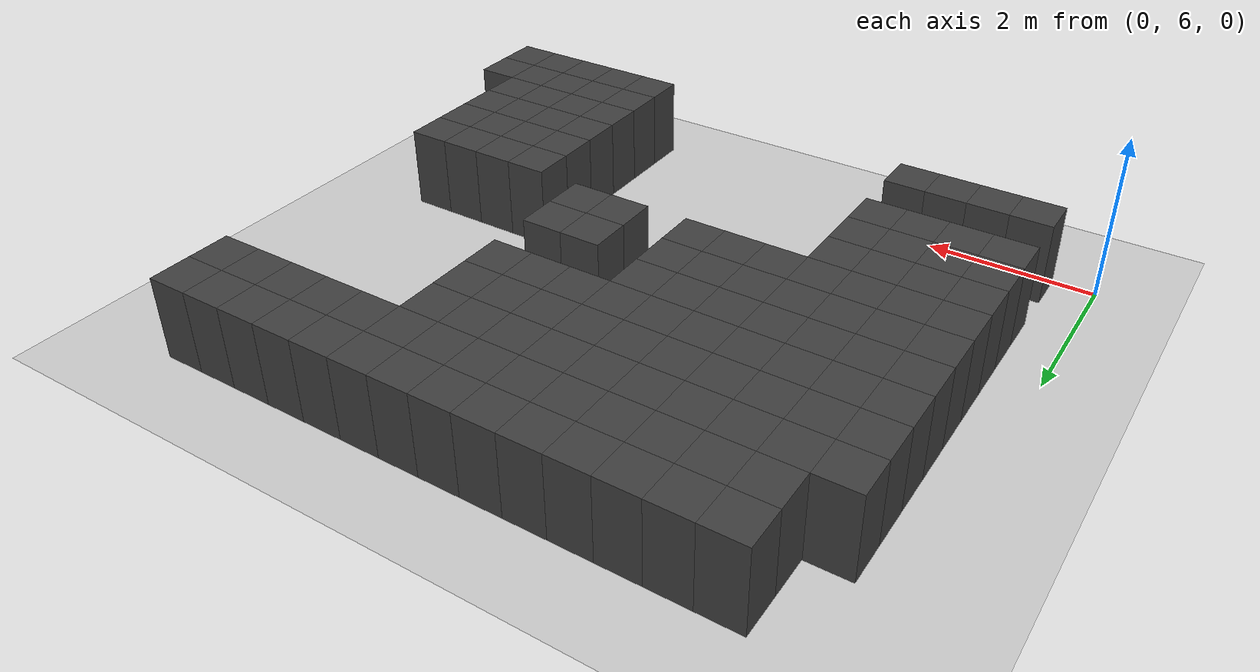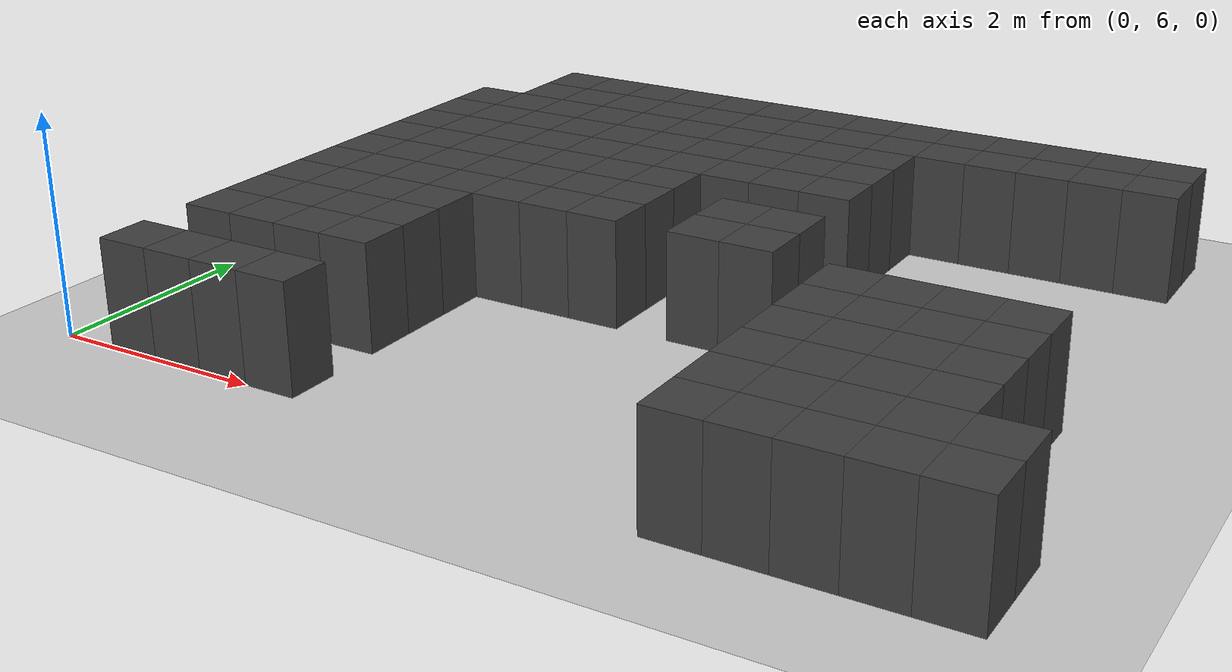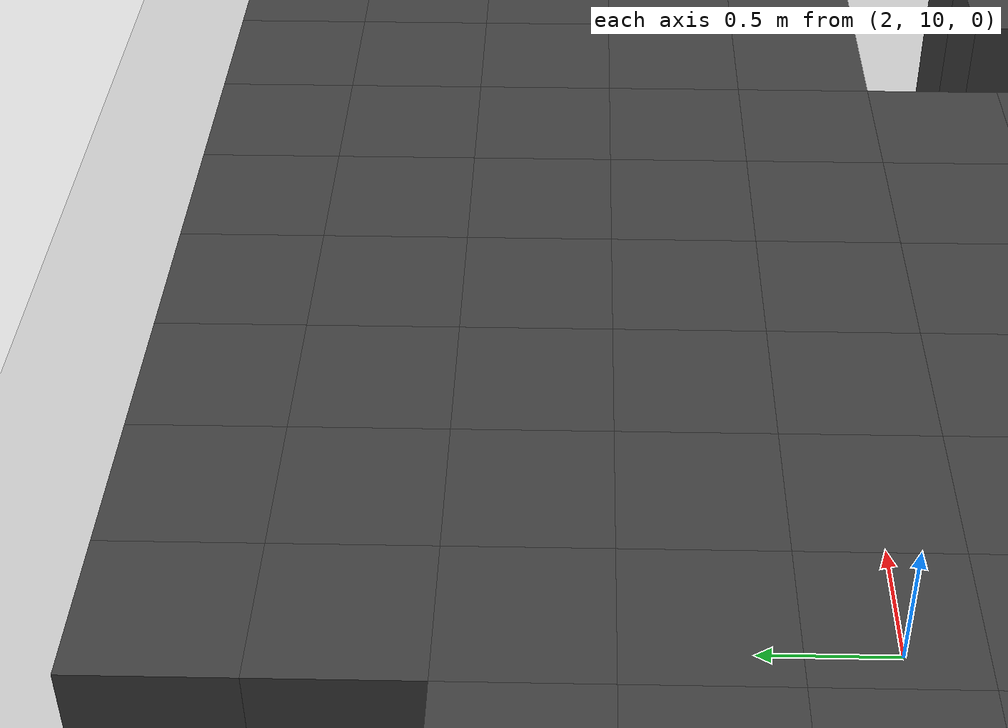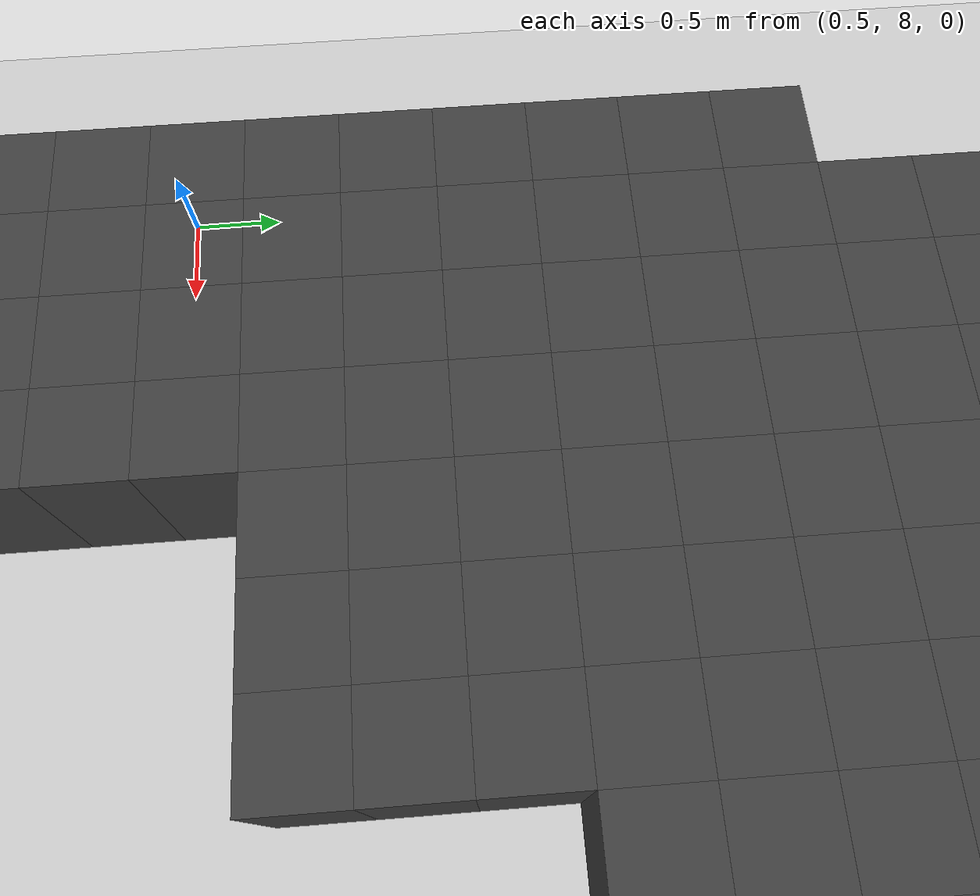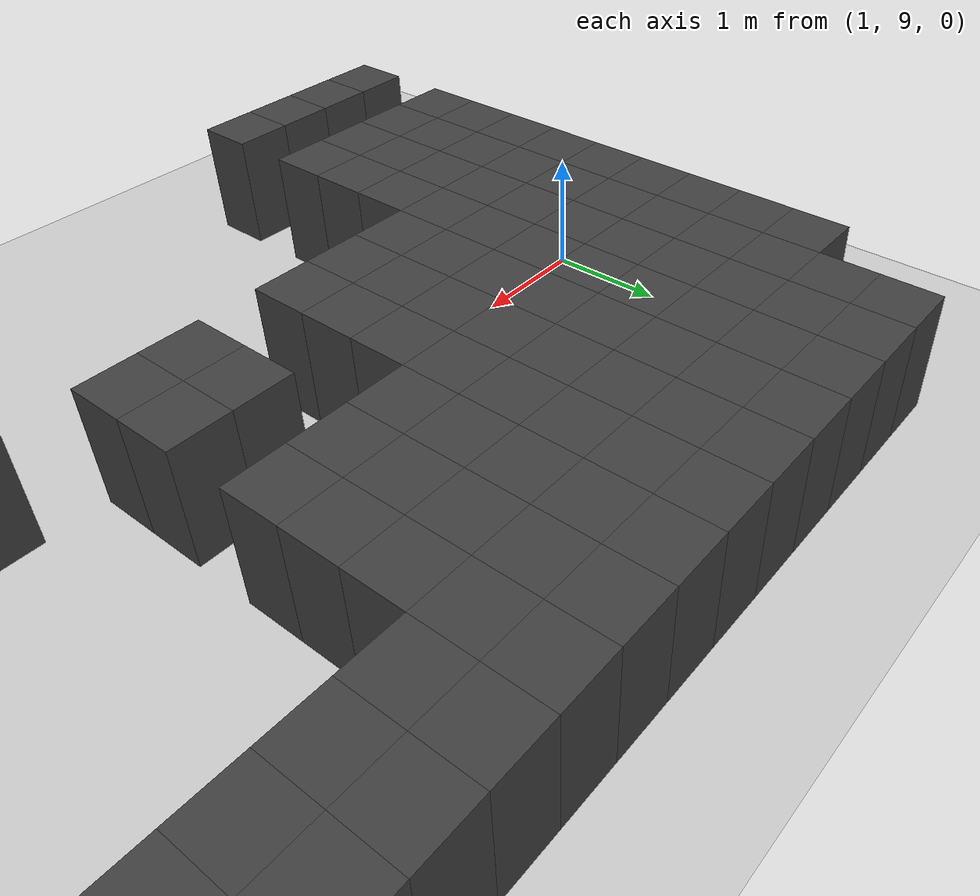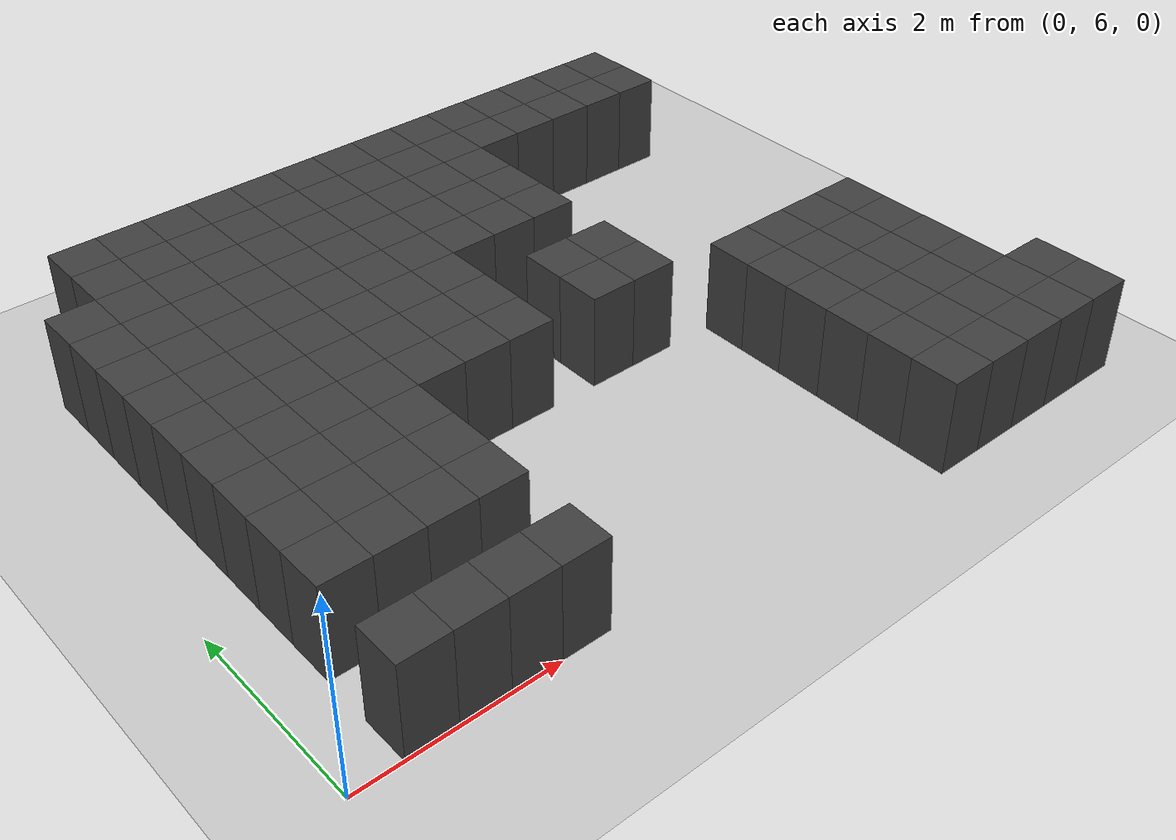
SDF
<sdf version="1.7">
 <world name="map_14802">
  <model name="ground_plane">
   <static>true</static>
   <link name="link">
    <collision name="collision">
     <geometry><plane><normal>0 0 1</normal><size>200 200</size></plane></geometry>
    </collision>
    <visual name="visual">
     <geometry><plane><normal>0 0 1</normal><size>200 200</size></plane></geometry>
     <material><ambient>0.8 0.8 0.8 1</ambient><diffuse>0.8 0.8 0.8 1</diffuse></material>
    </visual>
   </link>
  </model>
  <model name="maze_environment">
   <static>true</static>
   <link name="wall_27">
    <pose>1.250 12.250 0.500 0 0 0</pose>
    <collision name="col"><geometry><box><size>0.5 0.5 1.0</size></box></geometry></collision>
    <visual name="vis">
     <geometry><box><size>0.5 0.5 1.0</size></box></geometry>
     <material><ambient>0.15 0.15 0.15 1</ambient><diffuse>0.25 0.25 0.25 1</diffuse></material>
    </visual>
   </link>
   <link name="wall_28">
    <pose>1.750 12.250 0.500 0 0 0</pose>
    <collision name="col"><geometry><box><size>0.5 0.5 1.0</size></box></geometry></collision>
    <visual name="vis">
     <geometry><box><size>0.5 0.5 1.0</size></box></geometry>
     <material><ambient>0.15 0.15 0.15 1</ambient><diffuse>0.25 0.25 0.25 1</diffuse></material>
    </visual>
   </link>
   <link name="wall_29">
    <pose>2.250 12.250 0.500 0 0 0</pose>
    <collision name="col"><geometry><box><size>0.5 0.5 1.0</size></box></geometry></collision>
    <visual name="vis">
     <geometry><box><size>0.5 0.5 1.0</size></box></geometry>
     <material><ambient>0.15 0.15 0.15 1</ambient><diffuse>0.25 0.25 0.25 1</diffuse></material>
    </visual>
   </link>
   <link name="wall_30">
    <pose>2.750 12.250 0.500 0 0 0</pose>
    <collision name="col"><geometry><box><size>0.5 0.5 1.0</size></box></geometry></collision>
    <visual name="vis">
     <geometry><box><size>0.5 0.5 1.0</size></box></geometry>
     <material><ambient>0.15 0.15 0.15 1</ambient><diffuse>0.25 0.25 0.25 1</diffuse></material>
    </visual>
   </link>
   <link name="wall_31">
    <pose>3.250 12.250 0.500 0 0 0</pose>
    <collision name="col"><geometry><box><size>0.5 0.5 1.0</size></box></geometry></collision>
    <visual name="vis">
     <geometry><box><size>0.5 0.5 1.0</size></box></geometry>
     <material><ambient>0.15 0.15 0.15 1</ambient><diffuse>0.25 0.25 0.25 1</diffuse></material>
    </visual>
   </link>
   <link name="wall_32">
    <pose>3.750 12.250 0.500 0 0 0</pose>
    <collision name="col"><geometry><box><size>0.5 0.5 1.0</size></box></geometry></collision>
    <visual name="vis">
     <geometry><box><size>0.5 0.5 1.0</size></box></geometry>
     <material><ambient>0.15 0.15 0.15 1</ambient><diffuse>0.25 0.25 0.25 1</diffuse></material>
    </visual>
   </link>
   <link name="wall_33">
    <pose>4.250 12.250 0.500 0 0 0</pose>
    <collision name="col"><geometry><box><size>0.5 0.5 1.0</size></box></geometry></collision>
    <visual name="vis">
     <geometry><box><size>0.5 0.5 1.0</size></box></geometry>
     <material><ambient>0.15 0.15 0.15 1</ambient><diffuse>0.25 0.25 0.25 1</diffuse></material>
    </visual>
   </link>
   <link name="wall_34">
    <pose>4.750 12.250 0.500 0 0 0</pose>
    <collision name="col"><geometry><box><size>0.5 0.5 1.0</size></box></geometry></collision>
    <visual name="vis">
     <geometry><box><size>0.5 0.5 1.0</size></box></geometry>
     <material><ambient>0.15 0.15 0.15 1</ambient><diffuse>0.25 0.25 0.25 1</diffuse></material>
    </visual>
   </link>
   <link name="wall_35">
    <pose>5.250 12.250 0.500 0 0 0</pose>
    <collision name="col"><geometry><box><size>0.5 0.5 1.0</size></box></geometry></collision>
    <visual name="vis">
     <geometry><box><size>0.5 0.5 1.0</size></box></geometry>
     <material><ambient>0.15 0.15 0.15 1</ambient><diffuse>0.25 0.25 0.25 1</diffuse></material>
    </visual>
   </link>
   <link name="wall_36">
    <pose>5.750 12.250 0.500 0 0 0</pose>
    <collision name="col"><geometry><box><size>0.5 0.5 1.0</size></box></geometry></collision>
    <visual name="vis">
     <geometry><box><size>0.5 0.5 1.0</size></box></geometry>
     <material><ambient>0.15 0.15 0.15 1</ambient><diffuse>0.25 0.25 0.25 1</diffuse></material>
    </visual>
   </link>
   <link name="wall_37">
    <pose>6.250 12.250 0.500 0 0 0</pose>
    <collision name="col"><geometry><box><size>0.5 0.5 1.0</size></box></geometry></collision>
    <visual name="vis">
     <geometry><box><size>0.5 0.5 1.0</size></box></geometry>
     <material><ambient>0.15 0.15 0.15 1</ambient><diffuse>0.25 0.25 0.25 1</diffuse></material>
    </visual>
   </link>
   <link name="wall_38">
    <pose>6.750 12.250 0.500 0 0 0</pose>
    <collision name="col"><geometry><box><size>0.5 0.5 1.0</size></box></geometry></collision>
    <visual name="vis">
     <geometry><box><size>0.5 0.5 1.0</size></box></geometry>
     <material><ambient>0.15 0.15 0.15 1</ambient><diffuse>0.25 0.25 0.25 1</diffuse></material>
    </visual>
   </link>
   <link name="wall_39">
    <pose>7.250 12.250 0.500 0 0 0</pose>
    <collision name="col"><geometry><box><size>0.5 0.5 1.0</size></box></geometry></collision>
    <visual name="vis">
     <geometry><box><size>0.5 0.5 1.0</size></box></geometry>
     <material><ambient>0.15 0.15 0.15 1</ambient><diffuse>0.25 0.25 0.25 1</diffuse></material>
    </visual>
   </link>
   <link name="wall_40">
    <pose>7.750 12.250 0.500 0 0 0</pose>
    <collision name="col"><geometry><box><size>0.5 0.5 1.0</size></box></geometry></collision>
    <visual name="vis">
     <geometry><box><size>0.5 0.5 1.0</size></box></geometry>
     <material><ambient>0.15 0.15 0.15 1</ambient><diffuse>0.25 0.25 0.25 1</diffuse></material>
    </visual>
   </link>
   <link name="wall_74">
    <pose>1.250 11.750 0.500 0 0 0</pose>
    <collision name="col"><geometry><box><size>0.5 0.5 1.0</size></box></geometry></collision>
    <visual name="vis">
     <geometry><box><size>0.5 0.5 1.0</size></box></geometry>
     <material><ambient>0.15 0.15 0.15 1</ambient><diffuse>0.25 0.25 0.25 1</diffuse></material>
    </visual>
   </link>
   <link name="wall_75">
    <pose>1.750 11.750 0.500 0 0 0</pose>
    <collision name="col"><geometry><box><size>0.5 0.5 1.0</size></box></geometry></collision>
    <visual name="vis">
     <geometry><box><size>0.5 0.5 1.0</size></box></geometry>
     <material><ambient>0.15 0.15 0.15 1</ambient><diffuse>0.25 0.25 0.25 1</diffuse></material>
    </visual>
   </link>
   <link name="wall_76">
    <pose>2.250 11.750 0.500 0 0 0</pose>
    <collision name="col"><geometry><box><size>0.5 0.5 1.0</size></box></geometry></collision>
    <visual name="vis">
     <geometry><box><size>0.5 0.5 1.0</size></box></geometry>
     <material><ambient>0.15 0.15 0.15 1</ambient><diffuse>0.25 0.25 0.25 1</diffuse></material>
    </visual>
   </link>
   <link name="wall_77">
    <pose>2.750 11.750 0.500 0 0 0</pose>
    <collision name="col"><geometry><box><size>0.5 0.5 1.0</size></box></geometry></collision>
    <visual name="vis">
     <geometry><box><size>0.5 0.5 1.0</size></box></geometry>
     <material><ambient>0.15 0.15 0.15 1</ambient><diffuse>0.25 0.25 0.25 1</diffuse></material>
    </visual>
   </link>
   <link name="wall_78">
    <pose>3.250 11.750 0.500 0 0 0</pose>
    <collision name="col"><geometry><box><size>0.5 0.5 1.0</size></box></geometry></collision>
    <visual name="vis">
     <geometry><box><size>0.5 0.5 1.0</size></box></geometry>
     <material><ambient>0.15 0.15 0.15 1</ambient><diffuse>0.25 0.25 0.25 1</diffuse></material>
    </visual>
   </link>
   <link name="wall_79">
    <pose>3.750 11.750 0.500 0 0 0</pose>
    <collision name="col"><geometry><box><size>0.5 0.5 1.0</size></box></geometry></collision>
    <visual name="vis">
     <geometry><box><size>0.5 0.5 1.0</size></box></geometry>
     <material><ambient>0.15 0.15 0.15 1</ambient><diffuse>0.25 0.25 0.25 1</diffuse></material>
    </visual>
   </link>
   <link name="wall_80">
    <pose>4.250 11.750 0.500 0 0 0</pose>
    <collision name="col"><geometry><box><size>0.5 0.5 1.0</size></box></geometry></collision>
    <visual name="vis">
     <geometry><box><size>0.5 0.5 1.0</size></box></geometry>
     <material><ambient>0.15 0.15 0.15 1</ambient><diffuse>0.25 0.25 0.25 1</diffuse></material>
    </visual>
   </link>
   <link name="wall_81">
    <pose>4.750 11.750 0.500 0 0 0</pose>
    <collision name="col"><geometry><box><size>0.5 0.5 1.0</size></box></geometry></collision>
    <visual name="vis">
     <geometry><box><size>0.5 0.5 1.0</size></box></geometry>
     <material><ambient>0.15 0.15 0.15 1</ambient><diffuse>0.25 0.25 0.25 1</diffuse></material>
    </visual>
   </link>
   <link name="wall_82">
    <pose>5.250 11.750 0.500 0 0 0</pose>
    <collision name="col"><geometry><box><size>0.5 0.5 1.0</size></box></geometry></collision>
    <visual name="vis">
     <geometry><box><size>0.5 0.5 1.0</size></box></geometry>
     <material><ambient>0.15 0.15 0.15 1</ambient><diffuse>0.25 0.25 0.25 1</diffuse></material>
    </visual>
   </link>
   <link name="wall_83">
    <pose>5.750 11.750 0.500 0 0 0</pose>
    <collision name="col"><geometry><box><size>0.5 0.5 1.0</size></box></geometry></collision>
    <visual name="vis">
     <geometry><box><size>0.5 0.5 1.0</size></box></geometry>
     <material><ambient>0.15 0.15 0.15 1</ambient><diffuse>0.25 0.25 0.25 1</diffuse></material>
    </visual>
   </link>
   <link name="wall_84">
    <pose>6.250 11.750 0.500 0 0 0</pose>
    <collision name="col"><geometry><box><size>0.5 0.5 1.0</size></box></geometry></collision>
    <visual name="vis">
     <geometry><box><size>0.5 0.5 1.0</size></box></geometry>
     <material><ambient>0.15 0.15 0.15 1</ambient><diffuse>0.25 0.25 0.25 1</diffuse></material>
    </visual>
   </link>
   <link name="wall_85">
    <pose>6.750 11.750 0.500 0 0 0</pose>
    <collision name="col"><geometry><box><size>0.5 0.5 1.0</size></box></geometry></collision>
    <visual name="vis">
     <geometry><box><size>0.5 0.5 1.0</size></box></geometry>
     <material><ambient>0.15 0.15 0.15 1</ambient><diffuse>0.25 0.25 0.25 1</diffuse></material>
    </visual>
   </link>
   <link name="wall_86">
    <pose>7.250 11.750 0.500 0 0 0</pose>
    <collision name="col"><geometry><box><size>0.5 0.5 1.0</size></box></geometry></collision>
    <visual name="vis">
     <geometry><box><size>0.5 0.5 1.0</size></box></geometry>
     <material><ambient>0.15 0.15 0.15 1</ambient><diffuse>0.25 0.25 0.25 1</diffuse></material>
    </visual>
   </link>
   <link name="wall_87">
    <pose>7.750 11.750 0.500 0 0 0</pose>
    <collision name="col"><geometry><box><size>0.5 0.5 1.0</size></box></geometry></collision>
    <visual name="vis">
     <geometry><box><size>0.5 0.5 1.0</size></box></geometry>
     <material><ambient>0.15 0.15 0.15 1</ambient><diffuse>0.25 0.25 0.25 1</diffuse></material>
    </visual>
   </link>
   <link name="wall_120">
    <pose>0.750 11.250 0.500 0 0 0</pose>
    <collision name="col"><geometry><box><size>0.5 0.5 1.0</size></box></geometry></collision>
    <visual name="vis">
     <geometry><box><size>0.5 0.5 1.0</size></box></geometry>
     <material><ambient>0.15 0.15 0.15 1</ambient><diffuse>0.25 0.25 0.25 1</diffuse></material>
    </visual>
   </link>
   <link name="wall_121">
    <pose>1.250 11.250 0.500 0 0 0</pose>
    <collision name="col"><geometry><box><size>0.5 0.5 1.0</size></box></geometry></collision>
    <visual name="vis">
     <geometry><box><size>0.5 0.5 1.0</size></box></geometry>
     <material><ambient>0.15 0.15 0.15 1</ambient><diffuse>0.25 0.25 0.25 1</diffuse></material>
    </visual>
   </link>
   <link name="wall_122">
    <pose>1.750 11.250 0.500 0 0 0</pose>
    <collision name="col"><geometry><box><size>0.5 0.5 1.0</size></box></geometry></collision>
    <visual name="vis">
     <geometry><box><size>0.5 0.5 1.0</size></box></geometry>
     <material><ambient>0.15 0.15 0.15 1</ambient><diffuse>0.25 0.25 0.25 1</diffuse></material>
    </visual>
   </link>
   <link name="wall_123">
    <pose>2.250 11.250 0.500 0 0 0</pose>
    <collision name="col"><geometry><box><size>0.5 0.5 1.0</size></box></geometry></collision>
    <visual name="vis">
     <geometry><box><size>0.5 0.5 1.0</size></box></geometry>
     <material><ambient>0.15 0.15 0.15 1</ambient><diffuse>0.25 0.25 0.25 1</diffuse></material>
    </visual>
   </link>
   <link name="wall_124">
    <pose>2.750 11.250 0.500 0 0 0</pose>
    <collision name="col"><geometry><box><size>0.5 0.5 1.0</size></box></geometry></collision>
    <visual name="vis">
     <geometry><box><size>0.5 0.5 1.0</size></box></geometry>
     <material><ambient>0.15 0.15 0.15 1</ambient><diffuse>0.25 0.25 0.25 1</diffuse></material>
    </visual>
   </link>
   <link name="wall_125">
    <pose>3.250 11.250 0.500 0 0 0</pose>
    <collision name="col"><geometry><box><size>0.5 0.5 1.0</size></box></geometry></collision>
    <visual name="vis">
     <geometry><box><size>0.5 0.5 1.0</size></box></geometry>
     <material><ambient>0.15 0.15 0.15 1</ambient><diffuse>0.25 0.25 0.25 1</diffuse></material>
    </visual>
   </link>
   <link name="wall_126">
    <pose>3.750 11.250 0.500 0 0 0</pose>
    <collision name="col"><geometry><box><size>0.5 0.5 1.0</size></box></geometry></collision>
    <visual name="vis">
     <geometry><box><size>0.5 0.5 1.0</size></box></geometry>
     <material><ambient>0.15 0.15 0.15 1</ambient><diffuse>0.25 0.25 0.25 1</diffuse></material>
    </visual>
   </link>
   <link name="wall_127">
    <pose>4.250 11.250 0.500 0 0 0</pose>
    <collision name="col"><geometry><box><size>0.5 0.5 1.0</size></box></geometry></collision>
    <visual name="vis">
     <geometry><box><size>0.5 0.5 1.0</size></box></geometry>
     <material><ambient>0.15 0.15 0.15 1</ambient><diffuse>0.25 0.25 0.25 1</diffuse></material>
    </visual>
   </link>
   <link name="wall_128">
    <pose>4.750 11.250 0.500 0 0 0</pose>
    <collision name="col"><geometry><box><size>0.5 0.5 1.0</size></box></geometry></collision>
    <visual name="vis">
     <geometry><box><size>0.5 0.5 1.0</size></box></geometry>
     <material><ambient>0.15 0.15 0.15 1</ambient><diffuse>0.25 0.25 0.25 1</diffuse></material>
    </visual>
   </link>
   <link name="wall_129">
    <pose>5.250 11.250 0.500 0 0 0</pose>
    <collision name="col"><geometry><box><size>0.5 0.5 1.0</size></box></geometry></collision>
    <visual name="vis">
     <geometry><box><size>0.5 0.5 1.0</size></box></geometry>
     <material><ambient>0.15 0.15 0.15 1</ambient><diffuse>0.25 0.25 0.25 1</diffuse></material>
    </visual>
   </link>
   <link name="wall_162">
    <pose>0.750 10.750 0.500 0 0 0</pose>
    <collision name="col"><geometry><box><size>0.5 0.5 1.0</size></box></geometry></collision>
    <visual name="vis">
     <geometry><box><size>0.5 0.5 1.0</size></box></geometry>
     <material><ambient>0.15 0.15 0.15 1</ambient><diffuse>0.25 0.25 0.25 1</diffuse></material>
    </visual>
   </link>
   <link name="wall_163">
    <pose>1.250 10.750 0.500 0 0 0</pose>
    <collision name="col"><geometry><box><size>0.5 0.5 1.0</size></box></geometry></collision>
    <visual name="vis">
     <geometry><box><size>0.5 0.5 1.0</size></box></geometry>
     <material><ambient>0.15 0.15 0.15 1</ambient><diffuse>0.25 0.25 0.25 1</diffuse></material>
    </visual>
   </link>
   <link name="wall_164">
    <pose>1.750 10.750 0.500 0 0 0</pose>
    <collision name="col"><geometry><box><size>0.5 0.5 1.0</size></box></geometry></collision>
    <visual name="vis">
     <geometry><box><size>0.5 0.5 1.0</size></box></geometry>
     <material><ambient>0.15 0.15 0.15 1</ambient><diffuse>0.25 0.25 0.25 1</diffuse></material>
    </visual>
   </link>
   <link name="wall_165">
    <pose>2.250 10.750 0.500 0 0 0</pose>
    <collision name="col"><geometry><box><size>0.5 0.5 1.0</size></box></geometry></collision>
    <visual name="vis">
     <geometry><box><size>0.5 0.5 1.0</size></box></geometry>
     <material><ambient>0.15 0.15 0.15 1</ambient><diffuse>0.25 0.25 0.25 1</diffuse></material>
    </visual>
   </link>
   <link name="wall_166">
    <pose>2.750 10.750 0.500 0 0 0</pose>
    <collision name="col"><geometry><box><size>0.5 0.5 1.0</size></box></geometry></collision>
    <visual name="vis">
     <geometry><box><size>0.5 0.5 1.0</size></box></geometry>
     <material><ambient>0.15 0.15 0.15 1</ambient><diffuse>0.25 0.25 0.25 1</diffuse></material>
    </visual>
   </link>
   <link name="wall_167">
    <pose>3.250 10.750 0.500 0 0 0</pose>
    <collision name="col"><geometry><box><size>0.5 0.5 1.0</size></box></geometry></collision>
    <visual name="vis">
     <geometry><box><size>0.5 0.5 1.0</size></box></geometry>
     <material><ambient>0.15 0.15 0.15 1</ambient><diffuse>0.25 0.25 0.25 1</diffuse></material>
    </visual>
   </link>
   <link name="wall_168">
    <pose>3.750 10.750 0.500 0 0 0</pose>
    <collision name="col"><geometry><box><size>0.5 0.5 1.0</size></box></geometry></collision>
    <visual name="vis">
     <geometry><box><size>0.5 0.5 1.0</size></box></geometry>
     <material><ambient>0.15 0.15 0.15 1</ambient><diffuse>0.25 0.25 0.25 1</diffuse></material>
    </visual>
   </link>
   <link name="wall_169">
    <pose>4.250 10.750 0.500 0 0 0</pose>
    <collision name="col"><geometry><box><size>0.5 0.5 1.0</size></box></geometry></collision>
    <visual name="vis">
     <geometry><box><size>0.5 0.5 1.0</size></box></geometry>
     <material><ambient>0.15 0.15 0.15 1</ambient><diffuse>0.25 0.25 0.25 1</diffuse></material>
    </visual>
   </link>
   <link name="wall_170">
    <pose>4.750 10.750 0.500 0 0 0</pose>
    <collision name="col"><geometry><box><size>0.5 0.5 1.0</size></box></geometry></collision>
    <visual name="vis">
     <geometry><box><size>0.5 0.5 1.0</size></box></geometry>
     <material><ambient>0.15 0.15 0.15 1</ambient><diffuse>0.25 0.25 0.25 1</diffuse></material>
    </visual>
   </link>
   <link name="wall_171">
    <pose>5.250 10.750 0.500 0 0 0</pose>
    <collision name="col"><geometry><box><size>0.5 0.5 1.0</size></box></geometry></collision>
    <visual name="vis">
     <geometry><box><size>0.5 0.5 1.0</size></box></geometry>
     <material><ambient>0.15 0.15 0.15 1</ambient><diffuse>0.25 0.25 0.25 1</diffuse></material>
    </visual>
   </link>
   <link name="wall_198">
    <pose>0.750 10.250 0.500 0 0 0</pose>
    <collision name="col"><geometry><box><size>0.5 0.5 1.0</size></box></geometry></collision>
    <visual name="vis">
     <geometry><box><size>0.5 0.5 1.0</size></box></geometry>
     <material><ambient>0.15 0.15 0.15 1</ambient><diffuse>0.25 0.25 0.25 1</diffuse></material>
    </visual>
   </link>
   <link name="wall_199">
    <pose>1.250 10.250 0.500 0 0 0</pose>
    <collision name="col"><geometry><box><size>0.5 0.5 1.0</size></box></geometry></collision>
    <visual name="vis">
     <geometry><box><size>0.5 0.5 1.0</size></box></geometry>
     <material><ambient>0.15 0.15 0.15 1</ambient><diffuse>0.25 0.25 0.25 1</diffuse></material>
    </visual>
   </link>
   <link name="wall_200">
    <pose>1.750 10.250 0.500 0 0 0</pose>
    <collision name="col"><geometry><box><size>0.5 0.5 1.0</size></box></geometry></collision>
    <visual name="vis">
     <geometry><box><size>0.5 0.5 1.0</size></box></geometry>
     <material><ambient>0.15 0.15 0.15 1</ambient><diffuse>0.25 0.25 0.25 1</diffuse></material>
    </visual>
   </link>
   <link name="wall_201">
    <pose>2.250 10.250 0.500 0 0 0</pose>
    <collision name="col"><geometry><box><size>0.5 0.5 1.0</size></box></geometry></collision>
    <visual name="vis">
     <geometry><box><size>0.5 0.5 1.0</size></box></geometry>
     <material><ambient>0.15 0.15 0.15 1</ambient><diffuse>0.25 0.25 0.25 1</diffuse></material>
    </visual>
   </link>
   <link name="wall_202">
    <pose>2.750 10.250 0.500 0 0 0</pose>
    <collision name="col"><geometry><box><size>0.5 0.5 1.0</size></box></geometry></collision>
    <visual name="vis">
     <geometry><box><size>0.5 0.5 1.0</size></box></geometry>
     <material><ambient>0.15 0.15 0.15 1</ambient><diffuse>0.25 0.25 0.25 1</diffuse></material>
    </visual>
   </link>
   <link name="wall_203">
    <pose>3.250 10.250 0.500 0 0 0</pose>
    <collision name="col"><geometry><box><size>0.5 0.5 1.0</size></box></geometry></collision>
    <visual name="vis">
     <geometry><box><size>0.5 0.5 1.0</size></box></geometry>
     <material><ambient>0.15 0.15 0.15 1</ambient><diffuse>0.25 0.25 0.25 1</diffuse></material>
    </visual>
   </link>
   <link name="wall_204">
    <pose>3.750 10.250 0.500 0 0 0</pose>
    <collision name="col"><geometry><box><size>0.5 0.5 1.0</size></box></geometry></collision>
    <visual name="vis">
     <geometry><box><size>0.5 0.5 1.0</size></box></geometry>
     <material><ambient>0.15 0.15 0.15 1</ambient><diffuse>0.25 0.25 0.25 1</diffuse></material>
    </visual>
   </link>
   <link name="wall_205">
    <pose>4.250 10.250 0.500 0 0 0</pose>
    <collision name="col"><geometry><box><size>0.5 0.5 1.0</size></box></geometry></collision>
    <visual name="vis">
     <geometry><box><size>0.5 0.5 1.0</size></box></geometry>
     <material><ambient>0.15 0.15 0.15 1</ambient><diffuse>0.25 0.25 0.25 1</diffuse></material>
    </visual>
   </link>
   <link name="wall_206">
    <pose>4.750 10.250 0.500 0 0 0</pose>
    <collision name="col"><geometry><box><size>0.5 0.5 1.0</size></box></geometry></collision>
    <visual name="vis">
     <geometry><box><size>0.5 0.5 1.0</size></box></geometry>
     <material><ambient>0.15 0.15 0.15 1</ambient><diffuse>0.25 0.25 0.25 1</diffuse></material>
    </visual>
   </link>
   <link name="wall_207">
    <pose>5.250 10.250 0.500 0 0 0</pose>
    <collision name="col"><geometry><box><size>0.5 0.5 1.0</size></box></geometry></collision>
    <visual name="vis">
     <geometry><box><size>0.5 0.5 1.0</size></box></geometry>
     <material><ambient>0.15 0.15 0.15 1</ambient><diffuse>0.25 0.25 0.25 1</diffuse></material>
    </visual>
   </link>
   <link name="wall_230">
    <pose>0.750 9.750 0.500 0 0 0</pose>
    <collision name="col"><geometry><box><size>0.5 0.5 1.0</size></box></geometry></collision>
    <visual name="vis">
     <geometry><box><size>0.5 0.5 1.0</size></box></geometry>
     <material><ambient>0.15 0.15 0.15 1</ambient><diffuse>0.25 0.25 0.25 1</diffuse></material>
    </visual>
   </link>
   <link name="wall_231">
    <pose>1.250 9.750 0.500 0 0 0</pose>
    <collision name="col"><geometry><box><size>0.5 0.5 1.0</size></box></geometry></collision>
    <visual name="vis">
     <geometry><box><size>0.5 0.5 1.0</size></box></geometry>
     <material><ambient>0.15 0.15 0.15 1</ambient><diffuse>0.25 0.25 0.25 1</diffuse></material>
    </visual>
   </link>
   <link name="wall_232">
    <pose>1.750 9.750 0.500 0 0 0</pose>
    <collision name="col"><geometry><box><size>0.5 0.5 1.0</size></box></geometry></collision>
    <visual name="vis">
     <geometry><box><size>0.5 0.5 1.0</size></box></geometry>
     <material><ambient>0.15 0.15 0.15 1</ambient><diffuse>0.25 0.25 0.25 1</diffuse></material>
    </visual>
   </link>
   <link name="wall_233">
    <pose>2.250 9.750 0.500 0 0 0</pose>
    <collision name="col"><geometry><box><size>0.5 0.5 1.0</size></box></geometry></collision>
    <visual name="vis">
     <geometry><box><size>0.5 0.5 1.0</size></box></geometry>
     <material><ambient>0.15 0.15 0.15 1</ambient><diffuse>0.25 0.25 0.25 1</diffuse></material>
    </visual>
   </link>
   <link name="wall_234">
    <pose>2.750 9.750 0.500 0 0 0</pose>
    <collision name="col"><geometry><box><size>0.5 0.5 1.0</size></box></geometry></collision>
    <visual name="vis">
     <geometry><box><size>0.5 0.5 1.0</size></box></geometry>
     <material><ambient>0.15 0.15 0.15 1</ambient><diffuse>0.25 0.25 0.25 1</diffuse></material>
    </visual>
   </link>
   <link name="wall_235">
    <pose>3.250 9.750 0.500 0 0 0</pose>
    <collision name="col"><geometry><box><size>0.5 0.5 1.0</size></box></geometry></collision>
    <visual name="vis">
     <geometry><box><size>0.5 0.5 1.0</size></box></geometry>
     <material><ambient>0.15 0.15 0.15 1</ambient><diffuse>0.25 0.25 0.25 1</diffuse></material>
    </visual>
   </link>
   <link name="wall_236">
    <pose>3.750 9.750 0.500 0 0 0</pose>
    <collision name="col"><geometry><box><size>0.5 0.5 1.0</size></box></geometry></collision>
    <visual name="vis">
     <geometry><box><size>0.5 0.5 1.0</size></box></geometry>
     <material><ambient>0.15 0.15 0.15 1</ambient><diffuse>0.25 0.25 0.25 1</diffuse></material>
    </visual>
   </link>
   <link name="wall_259">
    <pose>0.750 9.250 0.500 0 0 0</pose>
    <collision name="col"><geometry><box><size>0.5 0.5 1.0</size></box></geometry></collision>
    <visual name="vis">
     <geometry><box><size>0.5 0.5 1.0</size></box></geometry>
     <material><ambient>0.15 0.15 0.15 1</ambient><diffuse>0.25 0.25 0.25 1</diffuse></material>
    </visual>
   </link>
   <link name="wall_260">
    <pose>1.250 9.250 0.500 0 0 0</pose>
    <collision name="col"><geometry><box><size>0.5 0.5 1.0</size></box></geometry></collision>
    <visual name="vis">
     <geometry><box><size>0.5 0.5 1.0</size></box></geometry>
     <material><ambient>0.15 0.15 0.15 1</ambient><diffuse>0.25 0.25 0.25 1</diffuse></material>
    </visual>
   </link>
   <link name="wall_261">
    <pose>1.750 9.250 0.500 0 0 0</pose>
    <collision name="col"><geometry><box><size>0.5 0.5 1.0</size></box></geometry></collision>
    <visual name="vis">
     <geometry><box><size>0.5 0.5 1.0</size></box></geometry>
     <material><ambient>0.15 0.15 0.15 1</ambient><diffuse>0.25 0.25 0.25 1</diffuse></material>
    </visual>
   </link>
   <link name="wall_262">
    <pose>2.250 9.250 0.500 0 0 0</pose>
    <collision name="col"><geometry><box><size>0.5 0.5 1.0</size></box></geometry></collision>
    <visual name="vis">
     <geometry><box><size>0.5 0.5 1.0</size></box></geometry>
     <material><ambient>0.15 0.15 0.15 1</ambient><diffuse>0.25 0.25 0.25 1</diffuse></material>
    </visual>
   </link>
   <link name="wall_263">
    <pose>2.750 9.250 0.500 0 0 0</pose>
    <collision name="col"><geometry><box><size>0.5 0.5 1.0</size></box></geometry></collision>
    <visual name="vis">
     <geometry><box><size>0.5 0.5 1.0</size></box></geometry>
     <material><ambient>0.15 0.15 0.15 1</ambient><diffuse>0.25 0.25 0.25 1</diffuse></material>
    </visual>
   </link>
   <link name="wall_264">
    <pose>3.250 9.250 0.500 0 0 0</pose>
    <collision name="col"><geometry><box><size>0.5 0.5 1.0</size></box></geometry></collision>
    <visual name="vis">
     <geometry><box><size>0.5 0.5 1.0</size></box></geometry>
     <material><ambient>0.15 0.15 0.15 1</ambient><diffuse>0.25 0.25 0.25 1</diffuse></material>
    </visual>
   </link>
   <link name="wall_265">
    <pose>3.750 9.250 0.500 0 0 0</pose>
    <collision name="col"><geometry><box><size>0.5 0.5 1.0</size></box></geometry></collision>
    <visual name="vis">
     <geometry><box><size>0.5 0.5 1.0</size></box></geometry>
     <material><ambient>0.15 0.15 0.15 1</ambient><diffuse>0.25 0.25 0.25 1</diffuse></material>
    </visual>
   </link>
   <link name="wall_266">
    <pose>4.750 9.250 0.500 0 0 0</pose>
    <collision name="col"><geometry><box><size>0.5 0.5 1.0</size></box></geometry></collision>
    <visual name="vis">
     <geometry><box><size>0.5 0.5 1.0</size></box></geometry>
     <material><ambient>0.15 0.15 0.15 1</ambient><diffuse>0.25 0.25 0.25 1</diffuse></material>
    </visual>
   </link>
   <link name="wall_267">
    <pose>5.250 9.250 0.500 0 0 0</pose>
    <collision name="col"><geometry><box><size>0.5 0.5 1.0</size></box></geometry></collision>
    <visual name="vis">
     <geometry><box><size>0.5 0.5 1.0</size></box></geometry>
     <material><ambient>0.15 0.15 0.15 1</ambient><diffuse>0.25 0.25 0.25 1</diffuse></material>
    </visual>
   </link>
   <link name="wall_285">
    <pose>0.750 8.750 0.500 0 0 0</pose>
    <collision name="col"><geometry><box><size>0.5 0.5 1.0</size></box></geometry></collision>
    <visual name="vis">
     <geometry><box><size>0.5 0.5 1.0</size></box></geometry>
     <material><ambient>0.15 0.15 0.15 1</ambient><diffuse>0.25 0.25 0.25 1</diffuse></material>
    </visual>
   </link>
   <link name="wall_286">
    <pose>1.250 8.750 0.500 0 0 0</pose>
    <collision name="col"><geometry><box><size>0.5 0.5 1.0</size></box></geometry></collision>
    <visual name="vis">
     <geometry><box><size>0.5 0.5 1.0</size></box></geometry>
     <material><ambient>0.15 0.15 0.15 1</ambient><diffuse>0.25 0.25 0.25 1</diffuse></material>
    </visual>
   </link>
   <link name="wall_287">
    <pose>1.750 8.750 0.500 0 0 0</pose>
    <collision name="col"><geometry><box><size>0.5 0.5 1.0</size></box></geometry></collision>
    <visual name="vis">
     <geometry><box><size>0.5 0.5 1.0</size></box></geometry>
     <material><ambient>0.15 0.15 0.15 1</ambient><diffuse>0.25 0.25 0.25 1</diffuse></material>
    </visual>
   </link>
   <link name="wall_288">
    <pose>2.250 8.750 0.500 0 0 0</pose>
    <collision name="col"><geometry><box><size>0.5 0.5 1.0</size></box></geometry></collision>
    <visual name="vis">
     <geometry><box><size>0.5 0.5 1.0</size></box></geometry>
     <material><ambient>0.15 0.15 0.15 1</ambient><diffuse>0.25 0.25 0.25 1</diffuse></material>
    </visual>
   </link>
   <link name="wall_289">
    <pose>2.750 8.750 0.500 0 0 0</pose>
    <collision name="col"><geometry><box><size>0.5 0.5 1.0</size></box></geometry></collision>
    <visual name="vis">
     <geometry><box><size>0.5 0.5 1.0</size></box></geometry>
     <material><ambient>0.15 0.15 0.15 1</ambient><diffuse>0.25 0.25 0.25 1</diffuse></material>
    </visual>
   </link>
   <link name="wall_290">
    <pose>3.250 8.750 0.500 0 0 0</pose>
    <collision name="col"><geometry><box><size>0.5 0.5 1.0</size></box></geometry></collision>
    <visual name="vis">
     <geometry><box><size>0.5 0.5 1.0</size></box></geometry>
     <material><ambient>0.15 0.15 0.15 1</ambient><diffuse>0.25 0.25 0.25 1</diffuse></material>
    </visual>
   </link>
   <link name="wall_291">
    <pose>3.750 8.750 0.500 0 0 0</pose>
    <collision name="col"><geometry><box><size>0.5 0.5 1.0</size></box></geometry></collision>
    <visual name="vis">
     <geometry><box><size>0.5 0.5 1.0</size></box></geometry>
     <material><ambient>0.15 0.15 0.15 1</ambient><diffuse>0.25 0.25 0.25 1</diffuse></material>
    </visual>
   </link>
   <link name="wall_292">
    <pose>4.750 8.750 0.500 0 0 0</pose>
    <collision name="col"><geometry><box><size>0.5 0.5 1.0</size></box></geometry></collision>
    <visual name="vis">
     <geometry><box><size>0.5 0.5 1.0</size></box></geometry>
     <material><ambient>0.15 0.15 0.15 1</ambient><diffuse>0.25 0.25 0.25 1</diffuse></material>
    </visual>
   </link>
   <link name="wall_293">
    <pose>5.250 8.750 0.500 0 0 0</pose>
    <collision name="col"><geometry><box><size>0.5 0.5 1.0</size></box></geometry></collision>
    <visual name="vis">
     <geometry><box><size>0.5 0.5 1.0</size></box></geometry>
     <material><ambient>0.15 0.15 0.15 1</ambient><diffuse>0.25 0.25 0.25 1</diffuse></material>
    </visual>
   </link>
   <link name="wall_315">
    <pose>0.750 8.250 0.500 0 0 0</pose>
    <collision name="col"><geometry><box><size>0.5 0.5 1.0</size></box></geometry></collision>
    <visual name="vis">
     <geometry><box><size>0.5 0.5 1.0</size></box></geometry>
     <material><ambient>0.15 0.15 0.15 1</ambient><diffuse>0.25 0.25 0.25 1</diffuse></material>
    </visual>
   </link>
   <link name="wall_316">
    <pose>1.250 8.250 0.500 0 0 0</pose>
    <collision name="col"><geometry><box><size>0.5 0.5 1.0</size></box></geometry></collision>
    <visual name="vis">
     <geometry><box><size>0.5 0.5 1.0</size></box></geometry>
     <material><ambient>0.15 0.15 0.15 1</ambient><diffuse>0.25 0.25 0.25 1</diffuse></material>
    </visual>
   </link>
   <link name="wall_317">
    <pose>1.750 8.250 0.500 0 0 0</pose>
    <collision name="col"><geometry><box><size>0.5 0.5 1.0</size></box></geometry></collision>
    <visual name="vis">
     <geometry><box><size>0.5 0.5 1.0</size></box></geometry>
     <material><ambient>0.15 0.15 0.15 1</ambient><diffuse>0.25 0.25 0.25 1</diffuse></material>
    </visual>
   </link>
   <link name="wall_318">
    <pose>2.250 8.250 0.500 0 0 0</pose>
    <collision name="col"><geometry><box><size>0.5 0.5 1.0</size></box></geometry></collision>
    <visual name="vis">
     <geometry><box><size>0.5 0.5 1.0</size></box></geometry>
     <material><ambient>0.15 0.15 0.15 1</ambient><diffuse>0.25 0.25 0.25 1</diffuse></material>
    </visual>
   </link>
   <link name="wall_319">
    <pose>6.250 8.250 0.500 0 0 0</pose>
    <collision name="col"><geometry><box><size>0.5 0.5 1.0</size></box></geometry></collision>
    <visual name="vis">
     <geometry><box><size>0.5 0.5 1.0</size></box></geometry>
     <material><ambient>0.15 0.15 0.15 1</ambient><diffuse>0.25 0.25 0.25 1</diffuse></material>
    </visual>
   </link>
   <link name="wall_320">
    <pose>6.750 8.250 0.500 0 0 0</pose>
    <collision name="col"><geometry><box><size>0.5 0.5 1.0</size></box></geometry></collision>
    <visual name="vis">
     <geometry><box><size>0.5 0.5 1.0</size></box></geometry>
     <material><ambient>0.15 0.15 0.15 1</ambient><diffuse>0.25 0.25 0.25 1</diffuse></material>
    </visual>
   </link>
   <link name="wall_321">
    <pose>7.250 8.250 0.500 0 0 0</pose>
    <collision name="col"><geometry><box><size>0.5 0.5 1.0</size></box></geometry></collision>
    <visual name="vis">
     <geometry><box><size>0.5 0.5 1.0</size></box></geometry>
     <material><ambient>0.15 0.15 0.15 1</ambient><diffuse>0.25 0.25 0.25 1</diffuse></material>
    </visual>
   </link>
   <link name="wall_322">
    <pose>7.750 8.250 0.500 0 0 0</pose>
    <collision name="col"><geometry><box><size>0.5 0.5 1.0</size></box></geometry></collision>
    <visual name="vis">
     <geometry><box><size>0.5 0.5 1.0</size></box></geometry>
     <material><ambient>0.15 0.15 0.15 1</ambient><diffuse>0.25 0.25 0.25 1</diffuse></material>
    </visual>
   </link>
   <link name="wall_339">
    <pose>0.750 7.750 0.500 0 0 0</pose>
    <collision name="col"><geometry><box><size>0.5 0.5 1.0</size></box></geometry></collision>
    <visual name="vis">
     <geometry><box><size>0.5 0.5 1.0</size></box></geometry>
     <material><ambient>0.15 0.15 0.15 1</ambient><diffuse>0.25 0.25 0.25 1</diffuse></material>
    </visual>
   </link>
   <link name="wall_340">
    <pose>1.250 7.750 0.500 0 0 0</pose>
    <collision name="col"><geometry><box><size>0.5 0.5 1.0</size></box></geometry></collision>
    <visual name="vis">
     <geometry><box><size>0.5 0.5 1.0</size></box></geometry>
     <material><ambient>0.15 0.15 0.15 1</ambient><diffuse>0.25 0.25 0.25 1</diffuse></material>
    </visual>
   </link>
   <link name="wall_341">
    <pose>1.750 7.750 0.500 0 0 0</pose>
    <collision name="col"><geometry><box><size>0.5 0.5 1.0</size></box></geometry></collision>
    <visual name="vis">
     <geometry><box><size>0.5 0.5 1.0</size></box></geometry>
     <material><ambient>0.15 0.15 0.15 1</ambient><diffuse>0.25 0.25 0.25 1</diffuse></material>
    </visual>
   </link>
   <link name="wall_342">
    <pose>2.250 7.750 0.500 0 0 0</pose>
    <collision name="col"><geometry><box><size>0.5 0.5 1.0</size></box></geometry></collision>
    <visual name="vis">
     <geometry><box><size>0.5 0.5 1.0</size></box></geometry>
     <material><ambient>0.15 0.15 0.15 1</ambient><diffuse>0.25 0.25 0.25 1</diffuse></material>
    </visual>
   </link>
   <link name="wall_343">
    <pose>6.250 7.750 0.500 0 0 0</pose>
    <collision name="col"><geometry><box><size>0.5 0.5 1.0</size></box></geometry></collision>
    <visual name="vis">
     <geometry><box><size>0.5 0.5 1.0</size></box></geometry>
     <material><ambient>0.15 0.15 0.15 1</ambient><diffuse>0.25 0.25 0.25 1</diffuse></material>
    </visual>
   </link>
   <link name="wall_344">
    <pose>6.750 7.750 0.500 0 0 0</pose>
    <collision name="col"><geometry><box><size>0.5 0.5 1.0</size></box></geometry></collision>
    <visual name="vis">
     <geometry><box><size>0.5 0.5 1.0</size></box></geometry>
     <material><ambient>0.15 0.15 0.15 1</ambient><diffuse>0.25 0.25 0.25 1</diffuse></material>
    </visual>
   </link>
   <link name="wall_345">
    <pose>7.250 7.750 0.500 0 0 0</pose>
    <collision name="col"><geometry><box><size>0.5 0.5 1.0</size></box></geometry></collision>
    <visual name="vis">
     <geometry><box><size>0.5 0.5 1.0</size></box></geometry>
     <material><ambient>0.15 0.15 0.15 1</ambient><diffuse>0.25 0.25 0.25 1</diffuse></material>
    </visual>
   </link>
   <link name="wall_346">
    <pose>7.750 7.750 0.500 0 0 0</pose>
    <collision name="col"><geometry><box><size>0.5 0.5 1.0</size></box></geometry></collision>
    <visual name="vis">
     <geometry><box><size>0.5 0.5 1.0</size></box></geometry>
     <material><ambient>0.15 0.15 0.15 1</ambient><diffuse>0.25 0.25 0.25 1</diffuse></material>
    </visual>
   </link>
   <link name="wall_365">
    <pose>0.750 7.250 0.500 0 0 0</pose>
    <collision name="col"><geometry><box><size>0.5 0.5 1.0</size></box></geometry></collision>
    <visual name="vis">
     <geometry><box><size>0.5 0.5 1.0</size></box></geometry>
     <material><ambient>0.15 0.15 0.15 1</ambient><diffuse>0.25 0.25 0.25 1</diffuse></material>
    </visual>
   </link>
   <link name="wall_366">
    <pose>1.250 7.250 0.500 0 0 0</pose>
    <collision name="col"><geometry><box><size>0.5 0.5 1.0</size></box></geometry></collision>
    <visual name="vis">
     <geometry><box><size>0.5 0.5 1.0</size></box></geometry>
     <material><ambient>0.15 0.15 0.15 1</ambient><diffuse>0.25 0.25 0.25 1</diffuse></material>
    </visual>
   </link>
   <link name="wall_367">
    <pose>1.750 7.250 0.500 0 0 0</pose>
    <collision name="col"><geometry><box><size>0.5 0.5 1.0</size></box></geometry></collision>
    <visual name="vis">
     <geometry><box><size>0.5 0.5 1.0</size></box></geometry>
     <material><ambient>0.15 0.15 0.15 1</ambient><diffuse>0.25 0.25 0.25 1</diffuse></material>
    </visual>
   </link>
   <link name="wall_368">
    <pose>2.250 7.250 0.500 0 0 0</pose>
    <collision name="col"><geometry><box><size>0.5 0.5 1.0</size></box></geometry></collision>
    <visual name="vis">
     <geometry><box><size>0.5 0.5 1.0</size></box></geometry>
     <material><ambient>0.15 0.15 0.15 1</ambient><diffuse>0.25 0.25 0.25 1</diffuse></material>
    </visual>
   </link>
   <link name="wall_369">
    <pose>6.250 7.250 0.500 0 0 0</pose>
    <collision name="col"><geometry><box><size>0.5 0.5 1.0</size></box></geometry></collision>
    <visual name="vis">
     <geometry><box><size>0.5 0.5 1.0</size></box></geometry>
     <material><ambient>0.15 0.15 0.15 1</ambient><diffuse>0.25 0.25 0.25 1</diffuse></material>
    </visual>
   </link>
   <link name="wall_370">
    <pose>6.750 7.250 0.500 0 0 0</pose>
    <collision name="col"><geometry><box><size>0.5 0.5 1.0</size></box></geometry></collision>
    <visual name="vis">
     <geometry><box><size>0.5 0.5 1.0</size></box></geometry>
     <material><ambient>0.15 0.15 0.15 1</ambient><diffuse>0.25 0.25 0.25 1</diffuse></material>
    </visual>
   </link>
   <link name="wall_371">
    <pose>7.250 7.250 0.500 0 0 0</pose>
    <collision name="col"><geometry><box><size>0.5 0.5 1.0</size></box></geometry></collision>
    <visual name="vis">
     <geometry><box><size>0.5 0.5 1.0</size></box></geometry>
     <material><ambient>0.15 0.15 0.15 1</ambient><diffuse>0.25 0.25 0.25 1</diffuse></material>
    </visual>
   </link>
   <link name="wall_372">
    <pose>7.750 7.250 0.500 0 0 0</pose>
    <collision name="col"><geometry><box><size>0.5 0.5 1.0</size></box></geometry></collision>
    <visual name="vis">
     <geometry><box><size>0.5 0.5 1.0</size></box></geometry>
     <material><ambient>0.15 0.15 0.15 1</ambient><diffuse>0.25 0.25 0.25 1</diffuse></material>
    </visual>
   </link>
   <link name="wall_397">
    <pose>6.250 6.750 0.500 0 0 0</pose>
    <collision name="col"><geometry><box><size>0.5 0.5 1.0</size></box></geometry></collision>
    <visual name="vis">
     <geometry><box><size>0.5 0.5 1.0</size></box></geometry>
     <material><ambient>0.15 0.15 0.15 1</ambient><diffuse>0.25 0.25 0.25 1</diffuse></material>
    </visual>
   </link>
   <link name="wall_398">
    <pose>6.750 6.750 0.500 0 0 0</pose>
    <collision name="col"><geometry><box><size>0.5 0.5 1.0</size></box></geometry></collision>
    <visual name="vis">
     <geometry><box><size>0.5 0.5 1.0</size></box></geometry>
     <material><ambient>0.15 0.15 0.15 1</ambient><diffuse>0.25 0.25 0.25 1</diffuse></material>
    </visual>
   </link>
   <link name="wall_399">
    <pose>7.250 6.750 0.500 0 0 0</pose>
    <collision name="col"><geometry><box><size>0.5 0.5 1.0</size></box></geometry></collision>
    <visual name="vis">
     <geometry><box><size>0.5 0.5 1.0</size></box></geometry>
     <material><ambient>0.15 0.15 0.15 1</ambient><diffuse>0.25 0.25 0.25 1</diffuse></material>
    </visual>
   </link>
   <link name="wall_400">
    <pose>7.750 6.750 0.500 0 0 0</pose>
    <collision name="col"><geometry><box><size>0.5 0.5 1.0</size></box></geometry></collision>
    <visual name="vis">
     <geometry><box><size>0.5 0.5 1.0</size></box></geometry>
     <material><ambient>0.15 0.15 0.15 1</ambient><diffuse>0.25 0.25 0.25 1</diffuse></material>
    </visual>
   </link>
   <link name="wall_428">
    <pose>0.750 6.250 0.500 0 0 0</pose>
    <collision name="col"><geometry><box><size>0.5 0.5 1.0</size></box></geometry></collision>
    <visual name="vis">
     <geometry><box><size>0.5 0.5 1.0</size></box></geometry>
     <material><ambient>0.15 0.15 0.15 1</ambient><diffuse>0.25 0.25 0.25 1</diffuse></material>
    </visual>
   </link>
   <link name="wall_429">
    <pose>1.250 6.250 0.500 0 0 0</pose>
    <collision name="col"><geometry><box><size>0.5 0.5 1.0</size></box></geometry></collision>
    <visual name="vis">
     <geometry><box><size>0.5 0.5 1.0</size></box></geometry>
     <material><ambient>0.15 0.15 0.15 1</ambient><diffuse>0.25 0.25 0.25 1</diffuse></material>
    </visual>
   </link>
   <link name="wall_430">
    <pose>1.750 6.250 0.500 0 0 0</pose>
    <collision name="col"><geometry><box><size>0.5 0.5 1.0</size></box></geometry></collision>
    <visual name="vis">
     <geometry><box><size>0.5 0.5 1.0</size></box></geometry>
     <material><ambient>0.15 0.15 0.15 1</ambient><diffuse>0.25 0.25 0.25 1</diffuse></material>
    </visual>
   </link>
   <link name="wall_431">
    <pose>2.250 6.250 0.500 0 0 0</pose>
    <collision name="col"><geometry><box><size>0.5 0.5 1.0</size></box></geometry></collision>
    <visual name="vis">
     <geometry><box><size>0.5 0.5 1.0</size></box></geometry>
     <material><ambient>0.15 0.15 0.15 1</ambient><diffuse>0.25 0.25 0.25 1</diffuse></material>
    </visual>
   </link>
   <link name="wall_432">
    <pose>6.250 6.250 0.500 0 0 0</pose>
    <collision name="col"><geometry><box><size>0.5 0.5 1.0</size></box></geometry></collision>
    <visual name="vis">
     <geometry><box><size>0.5 0.5 1.0</size></box></geometry>
     <material><ambient>0.15 0.15 0.15 1</ambient><diffuse>0.25 0.25 0.25 1</diffuse></material>
    </visual>
   </link>
   <link name="wall_433">
    <pose>6.750 6.250 0.500 0 0 0</pose>
    <collision name="col"><geometry><box><size>0.5 0.5 1.0</size></box></geometry></collision>
    <visual name="vis">
     <geometry><box><size>0.5 0.5 1.0</size></box></geometry>
     <material><ambient>0.15 0.15 0.15 1</ambient><diffuse>0.25 0.25 0.25 1</diffuse></material>
    </visual>
   </link>
   <link name="wall_434">
    <pose>7.250 6.250 0.500 0 0 0</pose>
    <collision name="col"><geometry><box><size>0.5 0.5 1.0</size></box></geometry></collision>
    <visual name="vis">
     <geometry><box><size>0.5 0.5 1.0</size></box></geometry>
     <material><ambient>0.15 0.15 0.15 1</ambient><diffuse>0.25 0.25 0.25 1</diffuse></material>
    </visual>
   </link>
   <link name="wall_435">
    <pose>7.750 6.250 0.500 0 0 0</pose>
    <collision name="col"><geometry><box><size>0.5 0.5 1.0</size></box></geometry></collision>
    <visual name="vis">
     <geometry><box><size>0.5 0.5 1.0</size></box></geometry>
     <material><ambient>0.15 0.15 0.15 1</ambient><diffuse>0.25 0.25 0.25 1</diffuse></material>
    </visual>
   </link>
   <link name="wall_436">
    <pose>8.250 6.250 0.500 0 0 0</pose>
    <collision name="col"><geometry><box><size>0.5 0.5 1.0</size></box></geometry></collision>
    <visual name="vis">
     <geometry><box><size>0.5 0.5 1.0</size></box></geometry>
     <material><ambient>0.15 0.15 0.15 1</ambient><diffuse>0.25 0.25 0.25 1</diffuse></material>
    </visual>
   </link>
   <link name="wall_473">
    <pose>6.250 5.750 0.500 0 0 0</pose>
    <collision name="col"><geometry><box><size>0.5 0.5 1.0</size></box></geometry></collision>
    <visual name="vis">
     <geometry><box><size>0.5 0.5 1.0</size></box></geometry>
     <material><ambient>0.15 0.15 0.15 1</ambient><diffuse>0.25 0.25 0.25 1</diffuse></material>
    </visual>
   </link>
   <link name="wall_474">
    <pose>6.750 5.750 0.500 0 0 0</pose>
    <collision name="col"><geometry><box><size>0.5 0.5 1.0</size></box></geometry></collision>
    <visual name="vis">
     <geometry><box><size>0.5 0.5 1.0</size></box></geometry>
     <material><ambient>0.15 0.15 0.15 1</ambient><diffuse>0.25 0.25 0.25 1</diffuse></material>
    </visual>
   </link>
   <link name="wall_475">
    <pose>7.250 5.750 0.500 0 0 0</pose>
    <collision name="col"><geometry><box><size>0.5 0.5 1.0</size></box></geometry></collision>
    <visual name="vis">
     <geometry><box><size>0.5 0.5 1.0</size></box></geometry>
     <material><ambient>0.15 0.15 0.15 1</ambient><diffuse>0.25 0.25 0.25 1</diffuse></material>
    </visual>
   </link>
   <link name="wall_476">
    <pose>7.750 5.750 0.500 0 0 0</pose>
    <collision name="col"><geometry><box><size>0.5 0.5 1.0</size></box></geometry></collision>
    <visual name="vis">
     <geometry><box><size>0.5 0.5 1.0</size></box></geometry>
     <material><ambient>0.15 0.15 0.15 1</ambient><diffuse>0.25 0.25 0.25 1</diffuse></material>
    </visual>
   </link>
   <link name="wall_477">
    <pose>8.250 5.750 0.500 0 0 0</pose>
    <collision name="col"><geometry><box><size>0.5 0.5 1.0</size></box></geometry></collision>
    <visual name="vis">
     <geometry><box><size>0.5 0.5 1.0</size></box></geometry>
     <material><ambient>0.15 0.15 0.15 1</ambient><diffuse>0.25 0.25 0.25 1</diffuse></material>
    </visual>
   </link>
  </model>
 </world>
</sdf>
